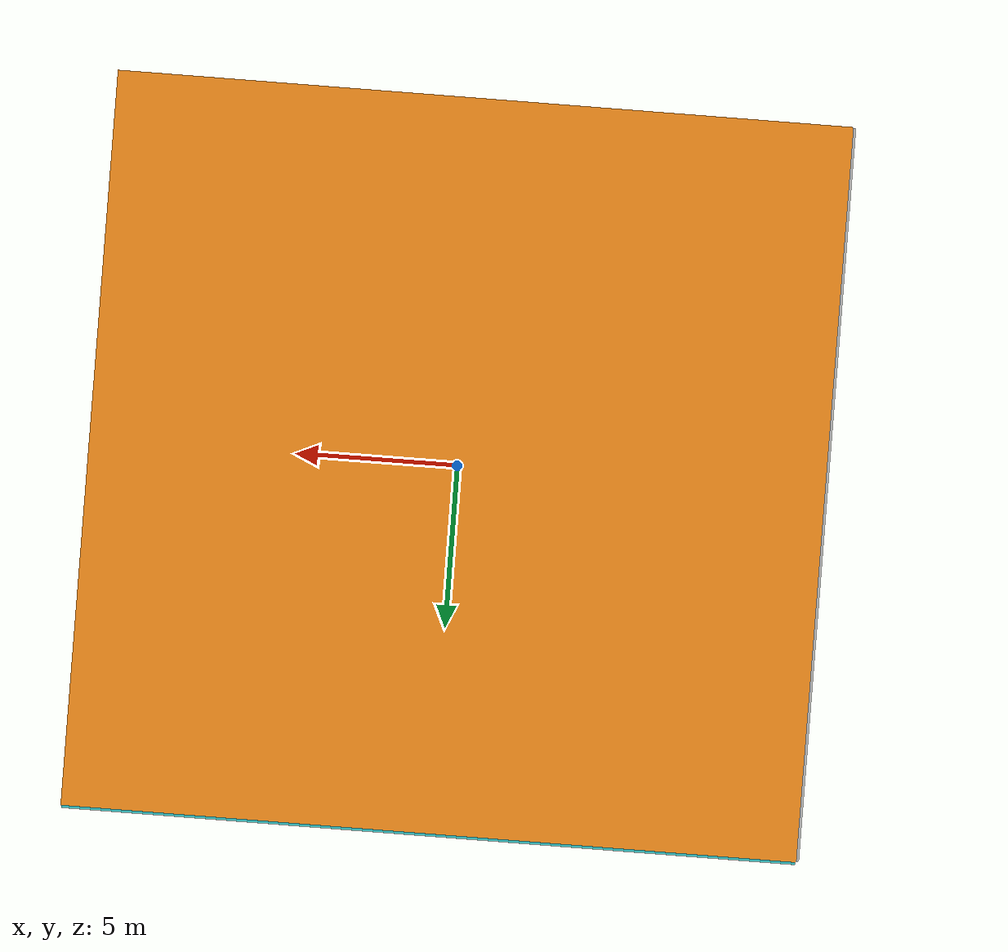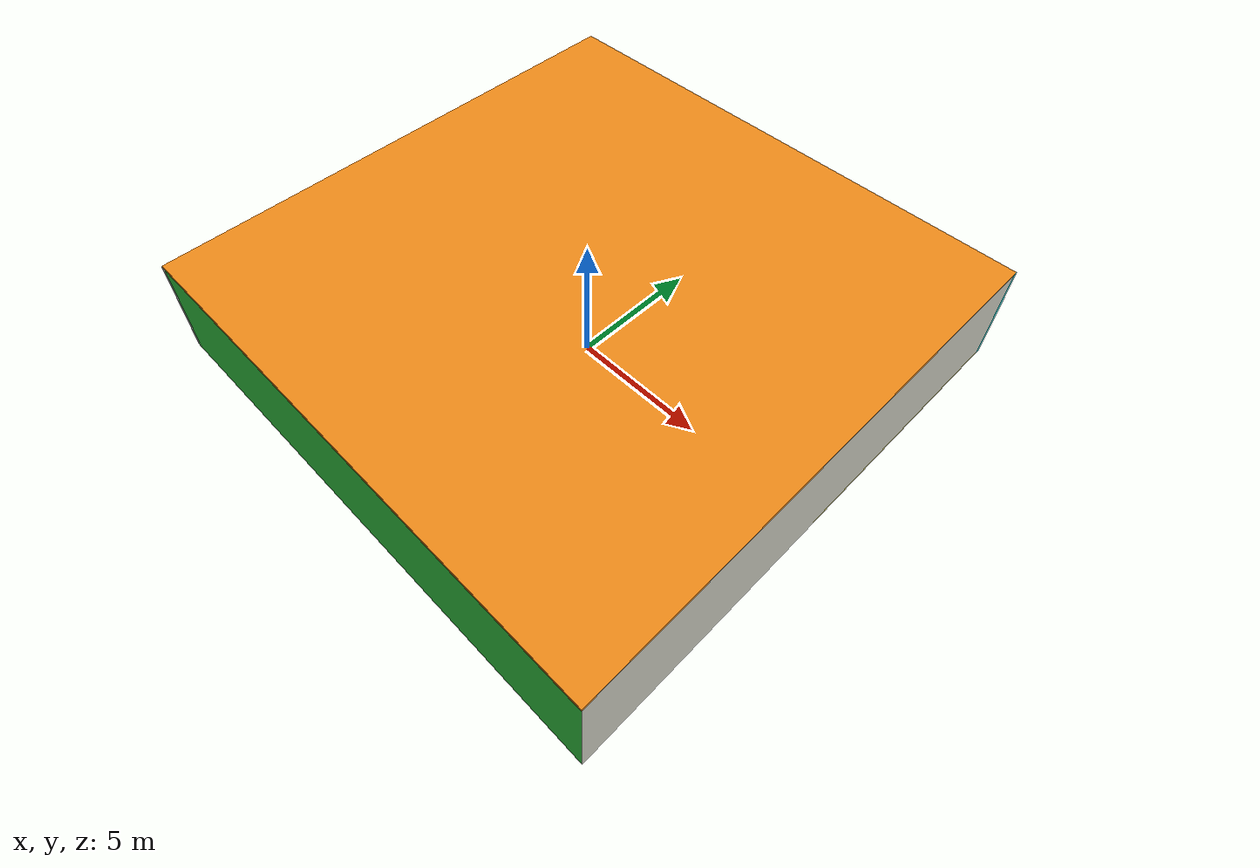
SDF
<sdf version="1.4">
 <world name="default">
  <physics type="ode">
   <max_step_size>0.001</max_step_size>
   <real_time_factor>1</real_time_factor>
   <real_time_update_rate>1000</real_time_update_rate>
   <gravity>0 0 -9.8</gravity>
  </physics>
  <scene><ambient>0.4 0.4 0.4 1</ambient><background>0.7 0.7 0.7 1</background><shadows>1</shadows></scene>
  <model name="Surrounding">
   <static>1</static>
   <link name="Ceiling">
    <collision name="Ceiling_Collision"><geometry><box><size>20 20 0.1</size></box></geometry></collision>
    <visual name="Ceiling_Visual">
     <geometry><box><size>20 20 0.1</size></box></geometry>
     <material>
      <script><uri>file://media/materials/scripts/gazebo.material</uri><name>Gazebo/Orange</name></script>
     </material>
    </visual>
    <pose>0 0 4.05 0 0 0</pose>
   </link>
   <link name="Wall_South">
    <collision name="Wall_South_Collision">
     <geometry><box><size>20 0 4</size></box></geometry>
     <pose>0 0 2 0 -0 0</pose>
    </collision>
    <visual name="Wall_South_Visual">
     <pose>0 0 2 0 -0 0</pose>
     <geometry><box><size>20 0 4</size></box></geometry>
     <material>
      <script><uri>file://media/materials/scripts/gazebo.material</uri><name>Gazebo/GreenGlow</name></script>
     </material>
    </visual>
    <velocity_decay><linear>0</linear><angular>0</angular></velocity_decay>
    <pose>0 -10 0 0 -0 0</pose>
   </link>
   <link name="Wall_East">
    <collision name="Wall_21_Collision">
     <geometry><box><size>20 0 4</size></box></geometry>
     <pose>0 0 2 0 -0 0</pose>
    </collision>
    <visual name="Wall_21_Visual">
     <pose>0 0 2 0 -0 0</pose>
     <geometry><box><size>20 0 4</size></box></geometry>
     <material>
      <script><uri>file://media/materials/scripts/gazebo.material</uri><name>Gazebo/PaintedWall</name></script>
     </material>
    </visual>
    <velocity_decay><linear>0</linear><angular>0</angular></velocity_decay>
    <pose>10 0 0 0 -0 1.5708</pose>
   </link>
   <link name="Wall_North">
    <collision name="Wall_22_Collision">
     <geometry><box><size>20 0.2 4</size></box></geometry>
     <pose>0 0 2 0 -0 0</pose>
    </collision>
    <visual name="Wall_22_Visual">
     <pose>0 0 2 0 -0 0</pose>
     <geometry><box><size>20 0.2 4</size></box></geometry>
     <material>
      <script><uri>file://media/materials/scripts/gazebo.material</uri><name>Gazebo/Turquoise</name></script>
     </material>
    </visual>
    <velocity_decay><linear>0</linear><angular>0</angular></velocity_decay>
    <pose>0 10 0 0 -0 0</pose>
   </link>
   <link name="Wall_West">
    <collision name="Wall_23_Collision">
     <geometry><box><size>20 0.2 4</size></box></geometry>
     <pose>0 0 2 0 -0 0</pose>
    </collision>
    <visual name="Wall_23_Visual">
     <pose>0 0 2 0 -0 0</pose>
     <geometry><box><size>20 0.2 4</size></box></geometry>
     <material>
      <script><uri>file://media/materials/scripts/gazebo.material</uri><name>Gazebo/LightOff</name></script>
     </material>
    </visual>
    <velocity_decay><linear>0</linear><angular>0</angular></velocity_decay>
    <pose>-10 0 0 0 0 -1.5708</pose>
   </link>
   <link name="Ground_link">
    <collision name="collision">
     <pose>0 0 .05 0 -0 0</pose>
     <geometry><box><size>20 20 0.1</size></box></geometry>
    </collision>
    <visual name="visual">
     <pose>0 0 .05 0 -0 0</pose>
     <geometry><box><size>20 20 0.1</size></box></geometry>
     <material>
      <script>
       <uri>file://media/materials/scripts/gazebo.material</uri>
       <name>Gazebo/YellowTransparent</name>
      </script>
     </material>
    </visual>
   </link>
   <static>1</static>
  </model>
  <spherical_coordinates>
   <surface_model>EARTH_WGS84</surface_model>
   <latitude_deg>0</latitude_deg>
   <longitude_deg>0</longitude_deg>
   <elevation>0</elevation>
   <heading_deg>0</heading_deg>
  </spherical_coordinates>
  <light name="lightball_0" type="diffuse">
   <diffuse>0.8 0.8 0.8 1</diffuse>
   <specular>0.2 0.2 0.2 1</specular>
   <attenuation>
    <range>100</range>
    <constant>0.7</constant>
    <linear>0.01</linear>
    <quadratic>0.001</quadratic>
   </attenuation>
   <direction>-0.5 0.1 -0.9</direction>
   <pose>-6.89791850712 -9.42593545256 2.16300560132 0 0 0</pose>
  </light>
  <light name="lightball_1" type="diffuse">
   <diffuse>0.8 0.8 0.8 1</diffuse>
   <specular>0.2 0.2 0.2 1</specular>
   <attenuation>
    <range>100</range>
    <constant>0.7</constant>
    <linear>0.01</linear>
    <quadratic>0.001</quadratic>
   </attenuation>
   <direction>-0.5 0.1 -0.9</direction>
   <pose>-5.01280066961 -0.176537993059 0.881191722295 0 0 0</pose>
  </light>
  <light name="lightball_2" type="diffuse">
   <diffuse>0.8 0.8 0.8 1</diffuse>
   <specular>0.2 0.2 0.2 1</specular>
   <attenuation>
    <range>100</range>
    <constant>0.7</constant>
    <linear>0.01</linear>
    <quadratic>0.001</quadratic>
   </attenuation>
   <direction>-0.5 0.1 -0.9</direction>
   <pose>-0.278571321335 8.84021696935 3.06898343102 0 0 0</pose>
  </light>
  <light name="lightball_3" type="diffuse">
   <diffuse>0.8 0.8 0.8 1</diffuse>
   <specular>0.2 0.2 0.2 1</specular>
   <attenuation>
    <range>100</range>
    <constant>0.7</constant>
    <linear>0.01</linear>
    <quadratic>0.001</quadratic>
   </attenuation>
   <direction>-0.5 0.1 -0.9</direction>
   <pose>-4.23567617301 -9.87233719857 2.68159705013 0 0 0</pose>
  </light>
  <light name="lightball_4" type="diffuse">
   <diffuse>0.8 0.8 0.8 1</diffuse>
   <specular>0.2 0.2 0.2 1</specular>
   <attenuation>
    <range>100</range>
    <constant>0.7</constant>
    <linear>0.01</linear>
    <quadratic>0.001</quadratic>
   </attenuation>
   <direction>-0.5 0.1 -0.9</direction>
   <pose>-8.13122278768 -9.45657441253 2.51618746551 0 0 0</pose>
  </light>
  <light name="lightball_5" type="diffuse">
   <diffuse>0.8 0.8 0.8 1</diffuse>
   <specular>0.2 0.2 0.2 1</specular>
   <attenuation>
    <range>100</range>
    <constant>0.7</constant>
    <linear>0.01</linear>
    <quadratic>0.001</quadratic>
   </attenuation>
   <direction>-0.5 0.1 -0.9</direction>
   <pose>8.04134709311 -0.0247742280707 3.45344505136 0 0 0</pose>
  </light>
  <light name="lightball_6" type="diffuse">
   <diffuse>0.8 0.8 0.8 1</diffuse>
   <specular>0.2 0.2 0.2 1</specular>
   <attenuation>
    <range>100</range>
    <constant>0.7</constant>
    <linear>0.01</linear>
    <quadratic>0.001</quadratic>
   </attenuation>
   <direction>-0.5 0.1 -0.9</direction>
   <pose>-5.13675440951 -6.07612489557 3.75853574212 0 0 0</pose>
  </light>
  <light name="lightball_7" type="diffuse">
   <diffuse>0.8 0.8 0.8 1</diffuse>
   <specular>0.2 0.2 0.2 1</specular>
   <attenuation>
    <range>100</range>
    <constant>0.7</constant>
    <linear>0.01</linear>
    <quadratic>0.001</quadratic>
   </attenuation>
   <direction>-0.5 0.1 -0.9</direction>
   <pose>4.97499025395 4.49179534835 2.25217220222 0 0 0</pose>
  </light>
  <light name="lightball_8" type="diffuse">
   <diffuse>0.8 0.8 0.8 1</diffuse>
   <specular>0.2 0.2 0.2 1</specular>
   <attenuation>
    <range>100</range>
    <constant>0.7</constant>
    <linear>0.01</linear>
    <quadratic>0.001</quadratic>
   </attenuation>
   <direction>-0.5 0.1 -0.9</direction>
   <pose>2.87403955521 7.68754983885 1.72742175938 0 0 0</pose>
  </light>
  <light name="lightball_9" type="diffuse">
   <diffuse>0.8 0.8 0.8 1</diffuse>
   <specular>0.2 0.2 0.2 1</specular>
   <attenuation>
    <range>100</range>
    <constant>0.7</constant>
    <linear>0.01</linear>
    <quadratic>0.001</quadratic>
   </attenuation>
   <direction>-0.5 0.1 -0.9</direction>
   <pose>7.90017193305 2.43813519885 3.58901109893 0 0 0</pose>
  </light>
  <include><uri>model://cabinet</uri><pose>-7.92215641575 0.839241575897 0 0 0 0.189344144484</pose></include>
  <include><uri>model://cabinet</uri><pose>-4.78313453734 -5.05148267549 0 0 0 0.0563870933272</pose></include>
  <include>
   <uri>model://construction_cone</uri>
   <pose>-4.68445244507 2.14719526019 0 0 0 1.66560635426</pose>
  </include>
  <include>
   <uri>model://textured_shapes</uri>
   <pose>-4.39095299321 7.37219637948 0 0 0 3.05142738614</pose>
  </include>
  <include><uri>model://cabinet</uri><pose>-2.18282178199 -4.51645825129 0 0 0 2.61107966662</pose></include>
  <include>
   <uri>model://construction_cone</uri>
   <pose>-1.34670888315 3.70536855212 0 0 0 2.76658516733</pose>
  </include>
  <include>
   <uri>model://construction_cone</uri>
   <pose>1.72454860236 -5.2394485575 0 0 0 1.51989171576</pose>
  </include>
  <include>
   <uri>model://construction_cone</uri>
   <pose>7.71735690961 5.07740385032 0 0 0 2.6682432147</pose>
  </include>
 </world>
</sdf>

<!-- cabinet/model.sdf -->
<sdf version="1.5">
  <model name="cabinet">
    <static>true</static>
    <link name="cabinet_bottom_plate">
      <inertial>
        <pose>0 0 -1 0 0 0</pose>
        <inertia>
          <ixx>2.050000</ixx>
          <ixy>0</ixy>
          <ixz>0</ixz>
          <iyy>2.050000</iyy>
          <iyz>0</iyz>
          <izz>2.050000</izz>
        </inertia>
        <mass>25.000000</mass>
      </inertial>
      <collision name="cabinet_bottom_plate_geom">
        <pose>0 0 0.010000 0 0 0</pose>
        <geometry>
          <box>
            <size>0.450000 0.450000 0.020000</size>
          </box>
        </geometry>
      </collision>
      <visual name="cabinet_bottom_plate_geom_visual">
        <pose>0 0 0.010000 0 0 0</pose>
        <geometry>
          <box>
            <size>0.450000 0.450000 0.020000</size>
          </box>
        </geometry>
        <material>
          <script>
            <uri>model://media/materials/scripts/gazebo.material</uri>
            <name>Gazebo/Wood</name>
          </script>
        </material>
      </visual>
      <collision name="cabinet_bottom_plate_geom_cabinet_back_plate">
        <pose>0.235000 0 0.510000 0 0 0</pose>
        <geometry>
          <box>
            <size>0.020000 0.450000 1.020000</size>
          </box>
        </geometry>
      </collision>
      <visual name="cabinet_bottom_plate_geom_cabinet_back_plate_visual">
        <pose>0.235000 0 0.510000 0 0 0</pose>
        <geometry>
          <box>
            <size>0.020000 0.450000 1.020000</size>
          </box>
        </geometry>
        <material>
          <script>
            <uri>model://media/materials/scripts/gazebo.material</uri>
            <name>Gazebo/Wood</name>
          </script>
        </material>
      </visual>
      <collision name="cabinet_bottom_plate_geom_cabinet_left_plate">
        <pose>0 0.235000 0.510000 0 0 0</pose>
        <geometry>
          <box>
            <size>0.450000 0.020000 1.020000</size>
          </box>
        </geometry>
      </collision>
      <visual name="cabinet_bottom_plate_geom_cabinet_left_plate_visual">
        <pose>0 0.235000 0.510000 0 0 0</pose>
        <geometry>
          <box>
            <size>0.450000 0.020000 1.020000</size>
          </box>
        </geometry>
        <material>
          <script>
            <uri>model://media/materials/scripts/gazebo.material</uri>
            <name>Gazebo/Wood</name>
          </script>
        </material>
      </visual>
      <collision name="cabinet_bottom_plate_geom_cabinet_middle_plate">
        <pose>0 0 0.510000 0 0 0</pose>
        <geometry>
          <box>
            <size>0.450000 0.450000 0.020000</size>
          </box>
        </geometry>
      </collision>
      <visual name="cabinet_bottom_plate_geom_cabinet_middle_plate_visual">
        <pose>0 0 0.510000 0 0 0</pose>
        <geometry>
          <box>
            <size>0.450000 0.450000 0.020000</size>
          </box>
        </geometry>
        <material>
          <script>
            <uri>model://media/materials/scripts/gazebo.material</uri>
            <name>Gazebo/Wood</name>
          </script>
        </material>
      </visual>
      <collision name="cabinet_bottom_plate_geom_cabinet_right_plate">
        <pose>0 -0.235000 0.510000 0 0 0</pose>
        <geometry>
          <box>
            <size>0.450000 0.020000 1.020000</size>
          </box>
        </geometry>
      </collision>
      <visual name="cabinet_bottom_plate_geom_cabinet_right_plate_visual">
        <pose>0 -0.235000 0.510000 0 0 0</pose>
        <geometry>
          <box>
            <size>0.450000 0.020000 1.020000</size>
          </box>
        </geometry>
        <material>
          <script>
            <uri>model://media/materials/scripts/gazebo.material</uri>
            <name>Gazebo/Wood</name>
          </script>
        </material>
      </visual>
      <collision name="cabinet_bottom_plate_geom_cabinet_top_plate">
        <pose>0 0 1.010000 0 0 0</pose>
        <geometry>
          <box>
            <size>0.450000 0.450000 0.020000</size>
          </box>
        </geometry>
      </collision>
      <visual name="cabinet_bottom_plate_geom_cabinet_top_plate_visual">
        <pose>0 0 1.010000 0 0 0</pose>
        <geometry>
          <box>
            <size>0.450000 0.450000 0.020000</size>
          </box>
        </geometry>
        <material>
          <script>
            <uri>model://media/materials/scripts/gazebo.material</uri>
            <name>Gazebo/Wood</name>
          </script>
        </material>
      </visual>
    </link>
  </model>
</sdf>

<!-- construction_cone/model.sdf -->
<sdf version="1.5">
  <model name="Construction Cone">
    <link name="link">
      <collision name="collision">
        <geometry>
          <mesh>
            <scale>10 10 10</scale>
            <uri>file://isr-testbed/construction_cone/meshes/construction_cone.dae</uri>
          </mesh>
        </geometry>
      </collision>
      <visual name="visual">
        <geometry>
          <mesh>
            <scale>10 10 10</scale>
            <uri>file://isr-testbed/construction_cone/meshes/construction_cone.dae</uri>
          </mesh>
        </geometry>
      </visual>
    </link>
  </model>
</sdf>

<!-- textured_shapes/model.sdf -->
<sdf version="1.6">
  <model name="textured_shapes">
    <pose>0 0 0.5 0 0 0</pose>
    <link name="box">
      <pose>0 -1.5 0 0 0 0</pose>
      <collision name="collision">
        <geometry>
          <box>
            <size>1 1 1</size>
          </box>
        </geometry>
      </collision>
      <visual name="visual">
        <geometry>
          <box>
            <size>1 1 1</size>
          </box>
        </geometry>
        <material>
          <script>
            <uri>model://../model_source/models/textured_shapes/materials/scripts</uri>
            <uri>model://../model_source/models/textured_shapes/materials/textures</uri>
            <name>TexturedShape/Squares</name>
          </script>
        </material>
      </visual>
    </link>
    <link name="sphere">
      <collision name="collision">
        <geometry>
          <sphere>
            <radius>0.5</radius>
          </sphere>
        </geometry>
      </collision>
      <visual name="visual">
        <geometry>
          <sphere>
            <radius>0.5</radius>
          </sphere>
        </geometry>
        <material>
          <script>
            <uri>model://../model_source/models/textured_shapes/materials/scripts</uri>
            <uri>model://../model_source/models/textured_shapes/materials/textures</uri>
            <name>TexturedShape/Squares</name>
          </script>
        </material>
      </visual>
    </link>
    <link name="cylinder">
      <pose>0 1.5 0 0 0 0</pose>
      <collision name="collision">
        <geometry>
          <cylinder>
            <radius>0.5</radius>
            <length>1</length>
          </cylinder>
        </geometry>
      </collision>
      <visual name="visual">
        <geometry>
          <cylinder>
            <radius>0.5</radius>
            <length>1</length>
          </cylinder>
        </geometry>
        <material>
          <script>
            <uri>model://../model_source/models/textured_shapes/materials/scripts</uri>
            <uri>model://../model_source/models/textured_shapes/materials/textures</uri>
            <name>TexturedShape/Squares</name>
          </script>
        </material>
      </visual>
    </link>
  </model>
</sdf>
